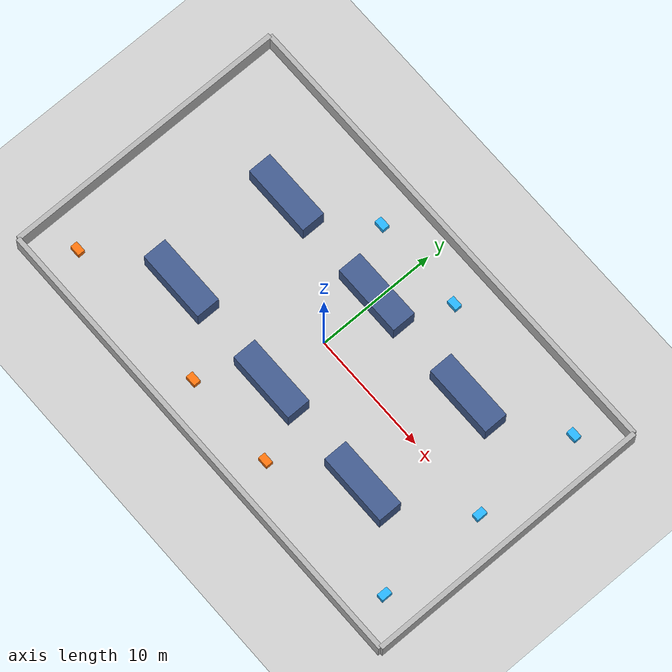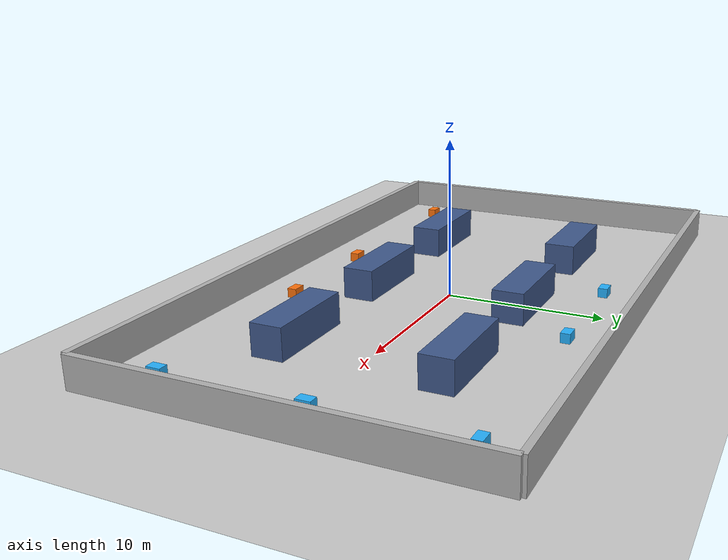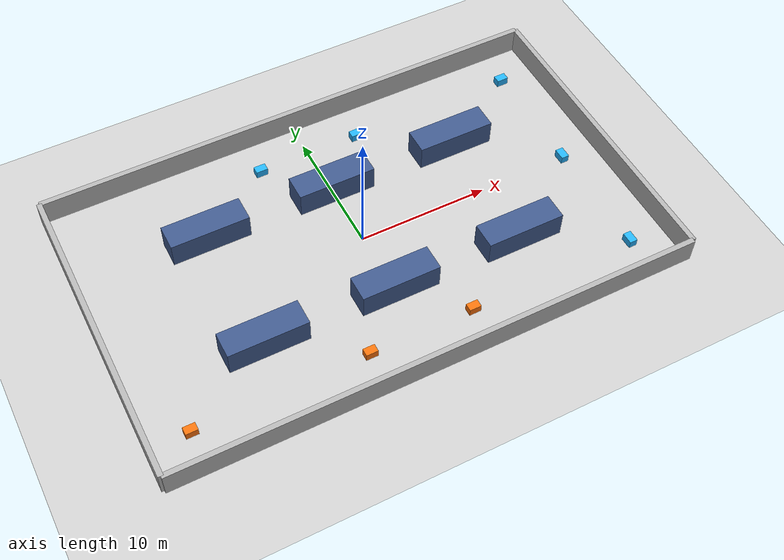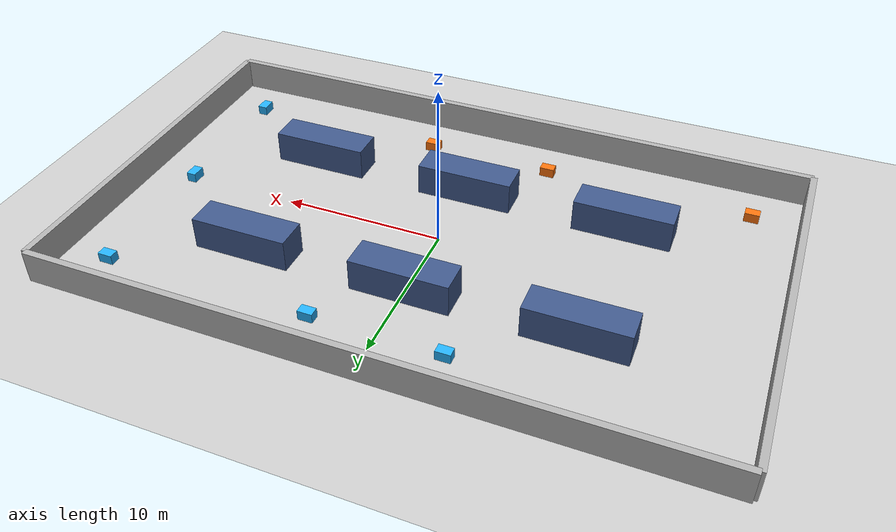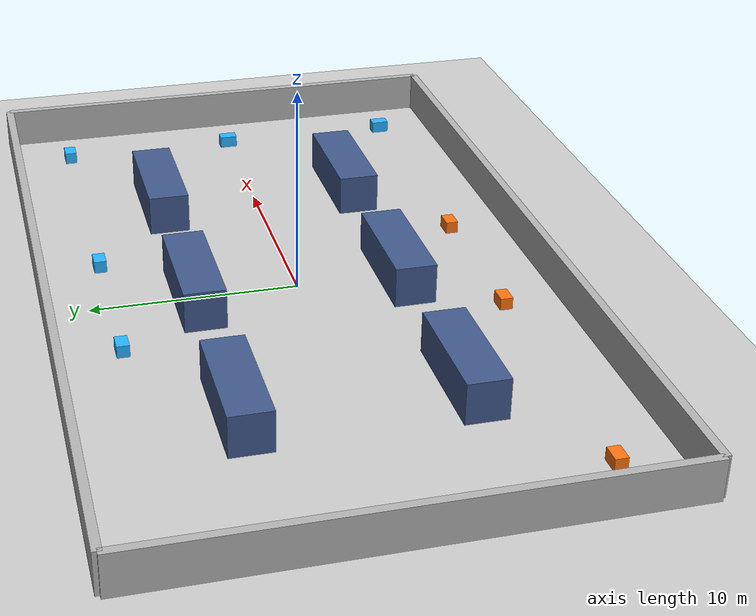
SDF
<?xml version="1.0"?>
<sdf version="1.6">
  <world name="warehouse_2d">
    <gravity>0 0 -9.81</gravity>
    <plugin name="gazebo_ros_state" filename="libgazebo_ros_state.so">
      <ros>
        <namespace>/gazebo</namespace>
      </ros>
      <update_rate>10.0</update_rate>
    </plugin>
    <include>
      <uri>model://sun</uri>
    </include>
    <include>
      <uri>model://ground_plane</uri>
    </include>
    <model name="north_wall">
      <static>true</static>
      <pose>0 12 1 0 0 0</pose>
      <link name="link">
        <collision name="collision">
          <geometry>
            <box>
              <size>40 0.4 2</size>
            </box>
          </geometry>
        </collision>
        <visual name="visual">
          <geometry>
            <box>
              <size>40 0.4 2</size>
            </box>
          </geometry>
          <material>
            <ambient>0.7 0.7 0.7 1</ambient>
          </material>
        </visual>
      </link>
    </model>
    <model name="south_wall">
      <static>true</static>
      <pose>0 -12 1 0 0 0</pose>
      <link name="link">
        <collision name="collision">
          <geometry>
            <box>
              <size>40 0.4 2</size>
            </box>
          </geometry>
        </collision>
        <visual name="visual">
          <geometry>
            <box>
              <size>40 0.4 2</size>
            </box>
          </geometry>
          <material>
            <ambient>0.7 0.7 0.7 1</ambient>
          </material>
        </visual>
      </link>
    </model>
    <model name="east_wall">
      <static>true</static>
      <pose>20 0 1 0 0 0</pose>
      <link name="link">
        <collision name="collision">
          <geometry>
            <box>
              <size>0.4 24 2</size>
            </box>
          </geometry>
        </collision>
        <visual name="visual">
          <geometry>
            <box>
              <size>0.4 24 2</size>
            </box>
          </geometry>
          <material>
            <ambient>0.7 0.7 0.7 1</ambient>
          </material>
        </visual>
      </link>
    </model>
    <model name="west_wall">
      <static>true</static>
      <pose>-20 0 1 0 0 0</pose>
      <link name="link">
        <collision name="collision">
          <geometry>
            <box>
              <size>0.4 24 2</size>
            </box>
          </geometry>
        </collision>
        <visual name="visual">
          <geometry>
            <box>
              <size>0.4 24 2</size>
            </box>
          </geometry>
          <material>
            <ambient>0.7 0.7 0.7 1</ambient>
          </material>
        </visual>
      </link>
    </model>
    <model name="shelf_nw">
      <static>true</static>
      <pose>-10 5 1 0 0 0</pose>
      <link name="link">
        <collision name="collision">
          <geometry>
            <box>
              <size>6 2 2</size>
            </box>
          </geometry>
        </collision>
        <visual name="visual">
          <geometry>
            <box>
              <size>6 2 2</size>
            </box>
          </geometry>
          <material>
            <ambient>0.25 0.35 0.55 1</ambient>
          </material>
        </visual>
      </link>
    </model>
    <model name="shelf_nc">
      <static>true</static>
      <pose>0 5 1 0 0 0</pose>
      <link name="link">
        <collision name="collision">
          <geometry>
            <box>
              <size>6 2 2</size>
            </box>
          </geometry>
        </collision>
        <visual name="visual">
          <geometry>
            <box>
              <size>6 2 2</size>
            </box>
          </geometry>
          <material>
            <ambient>0.25 0.35 0.55 1</ambient>
          </material>
        </visual>
      </link>
    </model>
    <model name="shelf_ne">
      <static>true</static>
      <pose>10 5 1 0 0 0</pose>
      <link name="link">
        <collision name="collision">
          <geometry>
            <box>
              <size>6 2 2</size>
            </box>
          </geometry>
        </collision>
        <visual name="visual">
          <geometry>
            <box>
              <size>6 2 2</size>
            </box>
          </geometry>
          <material>
            <ambient>0.25 0.35 0.55 1</ambient>
          </material>
        </visual>
      </link>
    </model>
    <model name="shelf_sw">
      <static>true</static>
      <pose>-10 -5 1 0 0 0</pose>
      <link name="link">
        <collision name="collision">
          <geometry>
            <box>
              <size>6 2 2</size>
            </box>
          </geometry>
        </collision>
        <visual name="visual">
          <geometry>
            <box>
              <size>6 2 2</size>
            </box>
          </geometry>
          <material>
            <ambient>0.25 0.35 0.55 1</ambient>
          </material>
        </visual>
      </link>
    </model>
    <model name="shelf_sc">
      <static>true</static>
      <pose>0 -5 1 0 0 0</pose>
      <link name="link">
        <collision name="collision">
          <geometry>
            <box>
              <size>6 2 2</size>
            </box>
          </geometry>
        </collision>
        <visual name="visual">
          <geometry>
            <box>
              <size>6 2 2</size>
            </box>
          </geometry>
          <material>
            <ambient>0.25 0.35 0.55 1</ambient>
          </material>
        </visual>
      </link>
    </model>
    <model name="shelf_se">
      <static>true</static>
      <pose>10 -5 1 0 0 0</pose>
      <link name="link">
        <collision name="collision">
          <geometry>
            <box>
              <size>6 2 2</size>
            </box>
          </geometry>
        </collision>
        <visual name="visual">
          <geometry>
            <box>
              <size>6 2 2</size>
            </box>
          </geometry>
          <material>
            <ambient>0.25 0.35 0.55 1</ambient>
          </material>
        </visual>
      </link>
    </model>
    <!-- These models are tracked through /gazebo/model_states and driven by
         the per-model planar motion plugins below. -->
    <model name="vehicle_1">
      <pose>-17 -9 0.3 0 0 0</pose>
      <link name="body">
        <inertial>
          <mass>20</mass>
          <inertia>
            <ixx>1</ixx>
            <iyy>1</iyy>
            <izz>1</izz>
          </inertia>
        </inertial>
        <collision name="collision">
          <geometry>
            <box>
              <size>0.9 0.6 0.6</size>
            </box>
          </geometry>
        </collision>
        <visual name="visual">
          <geometry>
            <box>
              <size>0.9 0.6 0.6</size>
            </box>
          </geometry>
          <material>
            <ambient>1 0.45 0.05 1</ambient>
          </material>
        </visual>
      </link>
      <plugin name="planar_move_1" filename="libgazebo_ros_planar_move.so">
        <ros>
          <namespace>/traffic/vehicle_1</namespace>
        </ros>
        <update_rate>50</update_rate>
        <publish_rate>10</publish_rate>
        <publish_odom>false</publish_odom>
        <publish_odom_tf>false</publish_odom_tf>
        <odometry_frame>odom_vehicle_1</odometry_frame>
        <robot_base_frame>body</robot_base_frame>
      </plugin>
    </model>
    <model name="vehicle_2">
      <pose>-4 -9 0.3 0 0 0</pose>
      <link name="body">
        <inertial>
          <mass>20</mass>
          <inertia>
            <ixx>1</ixx>
            <iyy>1</iyy>
            <izz>1</izz>
          </inertia>
        </inertial>
        <collision name="collision">
          <geometry>
            <box>
              <size>0.9 0.6 0.6</size>
            </box>
          </geometry>
        </collision>
        <visual name="visual">
          <geometry>
            <box>
              <size>0.9 0.6 0.6</size>
            </box>
          </geometry>
          <material>
            <ambient>1 0.45 0.05 1</ambient>
          </material>
        </visual>
      </link>
      <plugin name="planar_move_2" filename="libgazebo_ros_planar_move.so">
        <ros>
          <namespace>/traffic/vehicle_2</namespace>
        </ros>
        <update_rate>50</update_rate>
        <publish_rate>10</publish_rate>
        <publish_odom>false</publish_odom>
        <publish_odom_tf>false</publish_odom_tf>
        <odometry_frame>odom_vehicle_2</odometry_frame>
        <robot_base_frame>body</robot_base_frame>
      </plugin>
    </model>
    <model name="vehicle_3">
      <pose>4 -9 0.3 0 0 0</pose>
      <link name="body">
        <inertial>
          <mass>20</mass>
          <inertia>
            <ixx>1</ixx>
            <iyy>1</iyy>
            <izz>1</izz>
          </inertia>
        </inertial>
        <collision name="collision">
          <geometry>
            <box>
              <size>0.9 0.6 0.6</size>
            </box>
          </geometry>
        </collision>
        <visual name="visual">
          <geometry>
            <box>
              <size>0.9 0.6 0.6</size>
            </box>
          </geometry>
          <material>
            <ambient>1 0.45 0.05 1</ambient>
          </material>
        </visual>
      </link>
      <plugin name="planar_move_3" filename="libgazebo_ros_planar_move.so">
        <ros>
          <namespace>/traffic/vehicle_3</namespace>
        </ros>
        <update_rate>50</update_rate>
        <publish_rate>10</publish_rate>
        <publish_odom>false</publish_odom>
        <publish_odom_tf>false</publish_odom_tf>
        <odometry_frame>odom_vehicle_3</odometry_frame>
        <robot_base_frame>body</robot_base_frame>
      </plugin>
    </model>
    <model name="vehicle_4">
      <pose>17 -9 0.3 0 0 1.5708</pose>
      <link name="body">
        <inertial>
          <mass>20</mass>
          <inertia>
            <ixx>1</ixx>
            <iyy>1</iyy>
            <izz>1</izz>
          </inertia>
        </inertial>
        <collision name="collision">
          <geometry>
            <box>
              <size>0.9 0.6 0.6</size>
            </box>
          </geometry>
        </collision>
        <visual name="visual">
          <geometry>
            <box>
              <size>0.9 0.6 0.6</size>
            </box>
          </geometry>
          <material>
            <ambient>0.15 0.7 1 1</ambient>
          </material>
        </visual>
      </link>
      <plugin name="planar_move_4" filename="libgazebo_ros_planar_move.so">
        <ros>
          <namespace>/traffic/vehicle_4</namespace>
        </ros>
        <update_rate>50</update_rate>
        <publish_rate>10</publish_rate>
        <publish_odom>false</publish_odom>
        <publish_odom_tf>false</publish_odom_tf>
        <odometry_frame>odom_vehicle_4</odometry_frame>
        <robot_base_frame>body</robot_base_frame>
      </plugin>
    </model>
    <model name="vehicle_5">
      <pose>17 0 0.3 0 0 1.5708</pose>
      <link name="body">
        <inertial>
          <mass>20</mass>
          <inertia>
            <ixx>1</ixx>
            <iyy>1</iyy>
            <izz>1</izz>
          </inertia>
        </inertial>
        <collision name="collision">
          <geometry>
            <box>
              <size>0.9 0.6 0.6</size>
            </box>
          </geometry>
        </collision>
        <visual name="visual">
          <geometry>
            <box>
              <size>0.9 0.6 0.6</size>
            </box>
          </geometry>
          <material>
            <ambient>0.15 0.7 1 1</ambient>
          </material>
        </visual>
      </link>
      <plugin name="planar_move_5" filename="libgazebo_ros_planar_move.so">
        <ros>
          <namespace>/traffic/vehicle_5</namespace>
        </ros>
        <update_rate>50</update_rate>
        <publish_rate>10</publish_rate>
        <publish_odom>false</publish_odom>
        <publish_odom_tf>false</publish_odom_tf>
        <odometry_frame>odom_vehicle_5</odometry_frame>
        <robot_base_frame>body</robot_base_frame>
      </plugin>
    </model>
    <model name="vehicle_6">
      <pose>17 9 0.3 0 0 3.14159</pose>
      <link name="body">
        <inertial>
          <mass>20</mass>
          <inertia>
            <ixx>1</ixx>
            <iyy>1</iyy>
            <izz>1</izz>
          </inertia>
        </inertial>
        <collision name="collision">
          <geometry>
            <box>
              <size>0.9 0.6 0.6</size>
            </box>
          </geometry>
        </collision>
        <visual name="visual">
          <geometry>
            <box>
              <size>0.9 0.6 0.6</size>
            </box>
          </geometry>
          <material>
            <ambient>0.15 0.7 1 1</ambient>
          </material>
        </visual>
      </link>
      <plugin name="planar_move_6" filename="libgazebo_ros_planar_move.so">
        <ros>
          <namespace>/traffic/vehicle_6</namespace>
        </ros>
        <update_rate>50</update_rate>
        <publish_rate>10</publish_rate>
        <publish_odom>false</publish_odom>
        <publish_odom_tf>false</publish_odom_tf>
        <odometry_frame>odom_vehicle_6</odometry_frame>
        <robot_base_frame>body</robot_base_frame>
      </plugin>
    </model>
    <model name="vehicle_7">
      <pose>4 9 0.3 0 0 3.14159</pose>
      <link name="body">
        <inertial>
          <mass>20</mass>
          <inertia>
            <ixx>1</ixx>
            <iyy>1</iyy>
            <izz>1</izz>
          </inertia>
        </inertial>
        <collision name="collision">
          <geometry>
            <box>
              <size>0.9 0.6 0.6</size>
            </box>
          </geometry>
        </collision>
        <visual name="visual">
          <geometry>
            <box>
              <size>0.9 0.6 0.6</size>
            </box>
          </geometry>
          <material>
            <ambient>0.15 0.7 1 1</ambient>
          </material>
        </visual>
      </link>
      <plugin name="planar_move_7" filename="libgazebo_ros_planar_move.so">
        <ros>
          <namespace>/traffic/vehicle_7</namespace>
        </ros>
        <update_rate>50</update_rate>
        <publish_rate>10</publish_rate>
        <publish_odom>false</publish_odom>
        <publish_odom_tf>false</publish_odom_tf>
        <odometry_frame>odom_vehicle_7</odometry_frame>
        <robot_base_frame>body</robot_base_frame>
      </plugin>
    </model>
    <model name="vehicle_8">
      <pose>-4 9 0.3 0 0 3.14159</pose>
      <link name="body">
        <inertial>
          <mass>20</mass>
          <inertia>
            <ixx>1</ixx>
            <iyy>1</iyy>
            <izz>1</izz>
          </inertia>
        </inertial>
        <collision name="collision">
          <geometry>
            <box>
              <size>0.9 0.6 0.6</size>
            </box>
          </geometry>
        </collision>
        <visual name="visual">
          <geometry>
            <box>
              <size>0.9 0.6 0.6</size>
            </box>
          </geometry>
          <material>
            <ambient>0.15 0.7 1 1</ambient>
          </material>
        </visual>
      </link>
      <plugin name="planar_move_8" filename="libgazebo_ros_planar_move.so">
        <ros>
          <namespace>/traffic/vehicle_8</namespace>
        </ros>
        <update_rate>50</update_rate>
        <publish_rate>10</publish_rate>
        <publish_odom>false</publish_odom>
        <publish_odom_tf>false</publish_odom_tf>
        <odometry_frame>odom_vehicle_8</odometry_frame>
        <robot_base_frame>body</robot_base_frame>
      </plugin>
    </model>
  </world>
</sdf>
